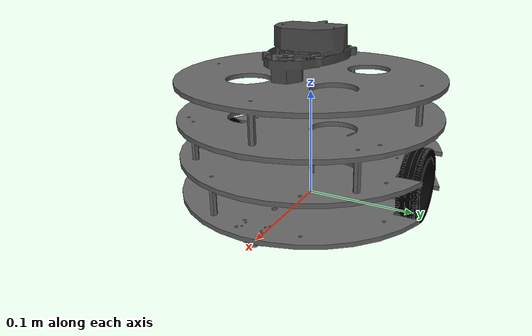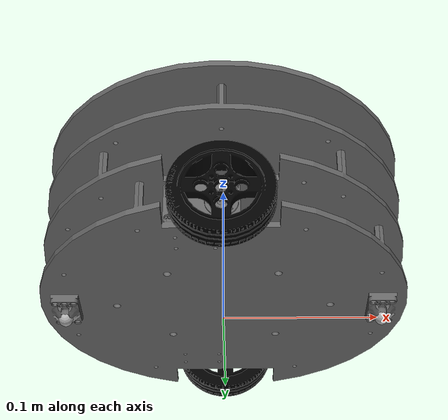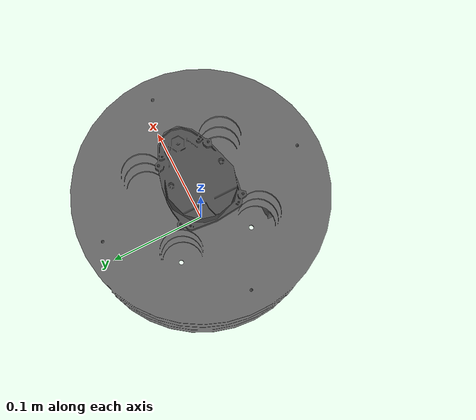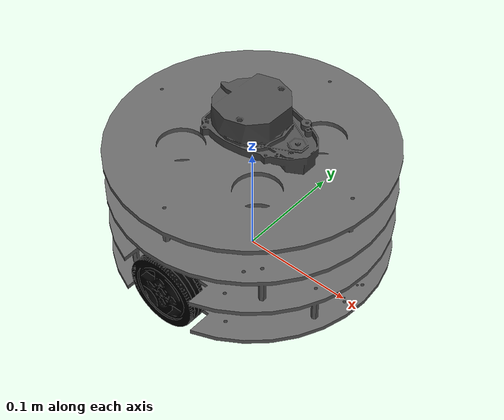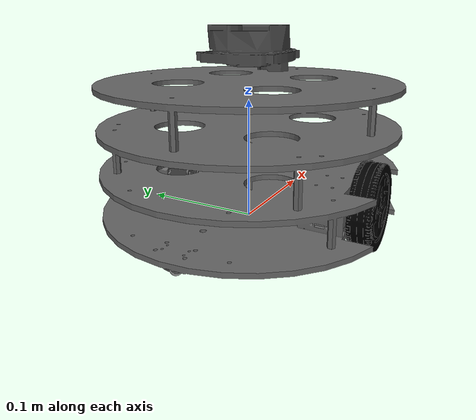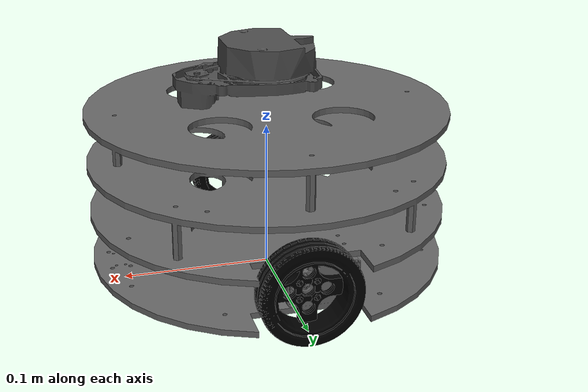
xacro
<?xml version="1.0"?>
<robot xmlns:xacro="http://www.ros.org/wiki/xacro" name="robot">

    <!-- add namespace -->
    <xacro:arg name="robot_namespace" default=""/>
    <xacro:property name="robot_namespace"/>

    <!-- init color -->
    <material name="black">
        <color rgba="0.0 0.0 0.0 1.0"/>
    </material>

    <material name="dark">
        <color rgba="0.3 0.3 0.3 1.0"/>
    </material>

    <material name="light_black">
        <color rgba="0.4 0.4 0.4 1.0"/>
    </material>

    <material name="blue">
        <color rgba="0.0 0.0 0.8 1.0"/>
    </material>

    <material name="green">
        <color rgba="0.0 0.8 0.0 1.0"/>
    </material>

    <material name="grey">
        <color rgba="0.5 0.5 0.5 1.0"/>
    </material>

    <material name="orange">
        <color rgba="1.0 0.4235 0.0392 1.0"/>
    </material>

    <material name="brown">
        <color rgba="0.8706 0.8118 0.7647 1.0"/>
    </material>

    <material name="red">
        <color rgba="0.8 0.0 0.0 1.0"/>
    </material>

    <material name="white">
        <color rgba="1.0 1.0 1.0 1.0"/>
    </material>

    <!-- base_footprint -->
    <link name="base_footprint"/>

    <!-- base_joint -->
    <joint name="base_joint" type="fixed">
        <parent link="base_footprint"/>
        <child link="base_link"/>
        <origin xyz="0.0 0.0 0.010" rpy="0 0 0"/>
    </joint>

    <!-- base_link -->
    <link name="base_link">
        <visual>
            <origin xyz="0 0 0" rpy="0 0 0"/>
            <geometry>
                <mesh filename="file://$(find robot_description)/meshes/base.stl" scale="0.001 0.001 0.001"/>
            </geometry>
            <material name="light_black"/>
        </visual>

        <collision>
            <origin xyz="0 0 0" rpy="0 0 0"/>
            <geometry>
                <mesh filename="file://$(find robot_description)/meshes/base.stl" scale="0.001 0.001 0.001"/>
            </geometry>
        </collision>

        <inertial>
            <origin xyz="0 0 0" rpy="0 0 0"/>
            <mass value="8.2573504e-01"/>
            <inertia ixx="2.2124416e-03" ixy="-1.2294101e-05" ixz="3.4938785e-05" iyy="2.1193702e-03" iyz="-5.0120904e-06" izz="2.0064271e-03" />
        </inertial>
    </link>

    <gazebo reference="base_link">
        <material>Gazebo/White</material>
    </gazebo>

    <!-- wheel_right_joint -->
    <joint name="wheel_right_joint" type="continuous">
        <parent link="base_link"/>
        <child link="wheel_right_link"/>
        <origin xyz="0 -0.1021 0.01835" rpy="-1.57 0 0"/>
        <axis xyz="0 0 1"/>
    </joint>

    <!-- wheel_right_link -->
    <link name="wheel_right_link">
        <visual>
            <geometry>
                <mesh filename="file://$(find robot_description)/meshes/wheel.stl" scale="0.001 0.001 0.001"/>
            </geometry>
            <material name="black"/>
        </visual>

        <collision>
            <geometry>
                <mesh filename="file://$(find robot_description)/meshes/wheel.stl" scale="0.001 0.001 0.001"/>
            </geometry>
        </collision>

        <inertial>
            <origin xyz="0 0 0" />
            <mass value="2.8498940e-02" />
            <inertia ixx="1.1175580e-05" ixy="-4.2369783e-11" ixz="-5.9381719e-09" iyy="1.1192413e-05" iyz="-1.4400107e-11" izz="2.0712558e-05" />
        </inertial>
    </link>

    <gazebo reference="wheel_right_link">
        <material>Gazebo/FlatBlack</material>
    </gazebo>

    <!-- wheel_left_joint -->
    <joint name="wheel_left_joint" type="continuous">
        <parent link="base_link"/>
        <child link="wheel_left_link"/>
        <origin xyz="0 0.1021 0.01835" rpy="-1.57 0 0"/>
        <axis xyz="0 0 1"/>
    </joint>

    <!-- wheel_left_link -->
    <link name="wheel_left_link">
        <visual>
            <geometry>
                <mesh filename="file://$(find robot_description)/meshes/wheel.stl" scale="0.001 0.001 0.001"/>
            </geometry>
            <material name="black"/>
        </visual>

        <collision>
            <geometry>
                <mesh filename="file://$(find robot_description)/meshes/wheel.stl" scale="0.001 0.001 0.001"/>
            </geometry>
        </collision>

        <inertial>
            <origin xyz="0 0 0" />
            <mass value="2.8498940e-02" />
            <inertia ixx="1.1175580e-05" ixy="-4.2369783e-11" ixz="-5.9381719e-09" iyy="1.1192413e-05" iyz="-1.4400107e-11" izz="2.0712558e-05" />
        </inertial>
    </link>

    <gazebo reference="wheel_left_link">
        <material>Gazebo/FlatBlack</material>
    </gazebo>

    <!-- caster_front_joint -->
    <joint name="caster_front_joint" type="fixed">
        <parent link="base_link"/>
        <child link="caster_front_link"/>
        <origin xyz="0.103 0 -0.0098" rpy="0 0 0"/>
    </joint>

    <!-- caster_front_link -->
    <link name="caster_front_link">
        <visual>
            <geometry>
                <mesh filename="file://$(find robot_description)/meshes/caster.stl" scale="0.001 0.001 0.001"/>
            </geometry>
            <material name="LightGrey">
                <color rgba="0.7 0.7 0.7 1.0"/>
            </material>
        </visual>
        <collision>
            <geometry>
                <mesh filename="file://$(find robot_description)/meshes/caster.stl" scale="0.001 0.001 0.001"/>
            </geometry>
            <surface>
                <friction>
                    <ode>
                        <mu>1.0</mu>  <!-- 增加摩擦系数 -->
                        <mu2>1.0</mu2>
                        <slip1>0.01</slip1>  <!-- 添加滑动参数 -->
                        <slip2>0.01</slip2>
                    </ode>
                </friction>
            </surface>
        </collision>
        <inertial>
            <origin xyz="0 0 0" />
            <mass value="0.05" /> <!-- 从0.005增加到0.05 -->
            <inertia ixx="0.0001" ixy="0.0" ixz="0.0" iyy="0.0001" iyz="0.0" izz="0.0001" />
        </inertial>
    </link>

    <gazebo reference="caster_front_link">
        <material>Gazebo/FlatBlack</material>
    </gazebo>

    <!-- caster_back_joint -->
    <joint name="caster_back_joint" type="fixed">
        <parent link="base_link"/>
        <child link="caster_back_link"/>
        <origin xyz="-0.103 0 -0.0098" rpy="0 0 0"/>
    </joint>

    <!-- caster_back_link -->
    <link name="caster_back_link">
        <visual>
            <geometry>
                <mesh filename="file://$(find robot_description)/meshes/caster.stl" scale="0.001 0.001 0.001"/>
            </geometry>
            <material name="LightGrey">
                <color rgba="0.7 0.7 0.7 1.0"/>
            </material>
        </visual>
        <collision>
            <geometry>
                <mesh filename="file://$(find robot_description)/meshes/caster.stl" scale="0.001 0.001 0.001"/>
            </geometry>
            <surface>
                <friction>
                    <ode>
                        <mu>1.0</mu>  <!-- 增加摩擦系数 -->
                        <mu2>1.0</mu2>
                        <slip1>0.01</slip1>  <!-- 添加滑动参数 -->
                        <slip2>0.01</slip2>
                    </ode>
                </friction>
            </surface>
        </collision>
        <inertial>
            <origin xyz="0 0 0" />
            <mass value="0.05" /> <!-- 从0.005增加到0.05 -->
            <inertia ixx="0.0001" ixy="0.0" ixz="0.0" iyy="0.0001" iyz="0.0" izz="0.0001" />
        </inertial>
    </link>

    <gazebo reference="caster_back_link">
        <material>Gazebo/FlatBlack</material>
    </gazebo>

    <!-- imu_joint -->
    <joint name="imu_joint" type="fixed">
        <parent link="base_link"/>
        <child link="imu_link"/>
        <origin xyz="0 0 0.068" rpy="0 0 0"/>
    </joint>

    <!-- imu_link -->
    <link name="imu_link"/>

    <gazebo reference="imu_link">
        <sensor name="tb3_imu" type="imu">
            <always_on>true</always_on>
            <update_rate>200</update_rate>
            <imu>
                <angular_velocity>
                    <x>
                    <noise type="gaussian">
                        <mean>0.0</mean>
                        <stddev>2e-4</stddev>
                    </noise>
                    </x>
                    <y>
                    <noise type="gaussian">
                        <mean>0.0</mean>
                        <stddev>2e-4</stddev>
                    </noise>
                    </y>
                    <z>
                    <noise type="gaussian">
                        <mean>0.0</mean>
                        <stddev>2e-4</stddev>
                    </noise>
                    </z>
                </angular_velocity>
                <linear_acceleration>
                    <x>
                    <noise type="gaussian">
                        <mean>0.0</mean>
                        <stddev>1.7e-2</stddev>
                    </noise>
                    </x>
                    <y>
                    <noise type="gaussian">
                        <mean>0.0</mean>
                        <stddev>1.7e-2</stddev>
                    </noise>
                    </y>
                    <z>
                    <noise type="gaussian">
                        <mean>0.0</mean>
                        <stddev>1.7e-2</stddev>
                    </noise>
                    </z>
                </linear_acceleration>
            </imu>
            <plugin name="robot_imu" filename="libgazebo_ros_imu_sensor.so">
                <ros>
                    <namespace>$(arg robot_namespace)</namespace>
                    <remapping>~/out:=imu</remapping>
                </ros>
                <initial_orientation_as_reference>false</initial_orientation_as_reference>
            </plugin>
        </sensor>
    </gazebo>

    <!-- scan_joint -->
    <joint name="scan_joint" type="fixed">
        <parent link="base_link"/>
        <child link="base_scan"/>
        <origin xyz="0 0 0.14" rpy="0 0 0"/>
    </joint>

    <!-- base_scan_link -->
    <link name="base_scan">
        <visual>
            <origin xyz="0 0 0.0" rpy="0 0 0"/>
            <geometry>
                <mesh filename="file://$(find robot_description)/meshes/lds.stl" scale="0.001 0.001 0.001"/>
            </geometry>
            <material name="dark"/>
        </visual>

        <collision>
            <geometry>
                <mesh filename="file://$(find robot_description)/meshes/lds.stl" scale="0.001 0.001 0.001"/>
            </geometry>
        </collision>

        <inertial>
            <mass value="0.114" />
            <origin xyz="0 0 0" rpy="0 0 0"/>
            <inertia ixx="0.001" ixy="0.0" ixz="0.0" iyy="0.001" iyz="0.0" izz="0.001" />
        </inertial>
    </link>

    <!-- .....................base_scan plugin ................................... -->
    <gazebo reference="base_scan">
        <sensor name="hls_lfcd_lds" type="ray">
            <always_on>true</always_on>
            <visualize>true</visualize>
            <pose>0 0 0 0 0 0</pose>
            <update_rate>100</update_rate>
            <ray>
                <scan>
                    <horizontal>
                        <samples>360</samples>
                        <resolution>1.000000</resolution>
                        <min_angle>0.000000</min_angle>
                        <max_angle>6.28319</max_angle>
                    </horizontal>
                </scan>
                <range>
                    <min>0.080000</min>
                    <max>8.0</max>
                    <resolution>0.001000</resolution>
                </range>
                <noise>
                    <type>gaussian</type>
                    <mean>0.0</mean>
                    <stddev>0.0001</stddev>
                </noise>
            </ray>
            <plugin name="robot_laserscan" filename="libgazebo_ros_ray_sensor.so">
                <ros>
                    <namespace>$(arg robot_namespace)</namespace>
                    <remapping>~/out:=scan</remapping>
                </ros>
                <output_type>sensor_msgs/LaserScan</output_type>
                <frame_name>base_scan</frame_name>
            </plugin>
        </sensor>
    </gazebo>

    <!-- .....................diff drive plugin ................................... -->
    <gazebo>
        <plugin name="robot_diff_drive" filename="libgazebo_ros_diff_drive.so">
            <ros>
                <namespace>$(arg robot_namespace)</namespace>
                <remapping>cmd_vel:=cmd_vel</remapping>
                <remapping>odom:=odom</remapping>
            </ros>
            <legacy_mode>false</legacy_mode>
            <update_rate>50.0</update_rate>
            <left_joint>wheel_left_joint</left_joint>
            <right_joint>wheel_right_joint</right_joint>
            <wheel_separation>0.2042</wheel_separation>
            <wheel_diameter>0.066</wheel_diameter>
            <robot_base_frame>base_footprint</robot_base_frame>
            <max_wheel_torque>10</max_wheel_torque>
            <max_wheel_acceleration>0.5</max_wheel_acceleration>
            <command_topic>cmd_vel</command_topic>
            <odometry_topic>odom</odometry_topic>
            <odometry_frame>odom</odometry_frame>
            <publish_odom>true</publish_odom>
            <publish_odom_tf>true</publish_odom_tf>
            <publish_wheel_tf>false</publish_wheel_tf>
            <!-- Odometry source, 0 for ENCODER, 1 for WORLD, defaults to WORLD -->
            <odometry_source>0</odometry_source>
        </plugin>
    </gazebo>

    <!--............................... ground truth plugin .............................-->
    <gazebo>
        <plugin name="p3d_base_controller" filename="libgazebo_ros_p3d.so">
            <ros>
                <namespace>$(arg robot_namespace)</namespace>
                <remapping>odom:=p3d_ground_truth</remapping>
            </ros>
            <always_on>true</always_on>
            <update_rate>50.0</update_rate>
            <body_name>base_footprint</body_name>
            <gaussian_noise>0.00</gaussian_noise>
            <frame_name>map</frame_name>
        </plugin>
    </gazebo>

    <!-- 为轮子添加对称的Gazebo物理属性 -->
    <gazebo reference="wheel_left_link">
        <material>Gazebo/FlatBlack</material>
        <kp>1000000.0</kp>
        <kd>100.0</kd>
        <mu1>1.5</mu1>
        <mu2>1.5</mu2>
        <minDepth>0.001</minDepth>
        <maxVel>1.0</maxVel>
    </gazebo>

    <gazebo reference="wheel_right_link">
        <material>Gazebo/FlatBlack</material>
        <kp>1000000.0</kp>
        <kd>100.0</kd>
        <mu1>1.5</mu1>
        <mu2>1.5</mu2>
        <minDepth>0.001</minDepth>
        <maxVel>1.0</maxVel>
    </gazebo>

</robot>
